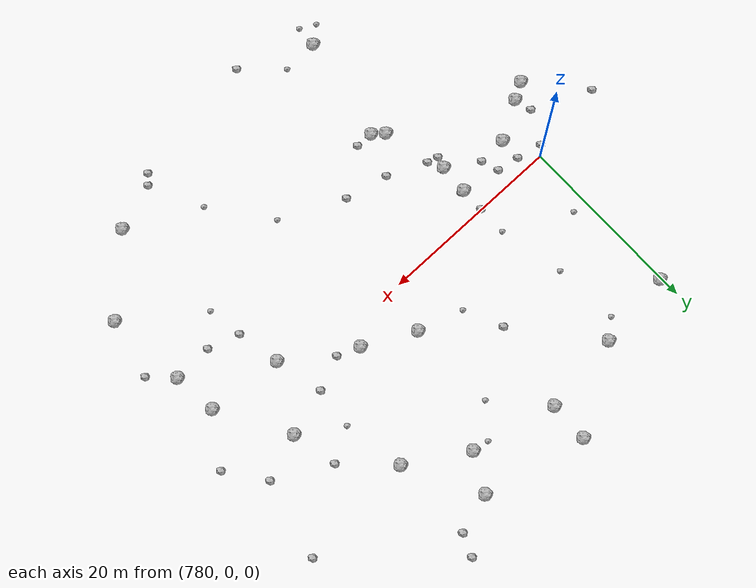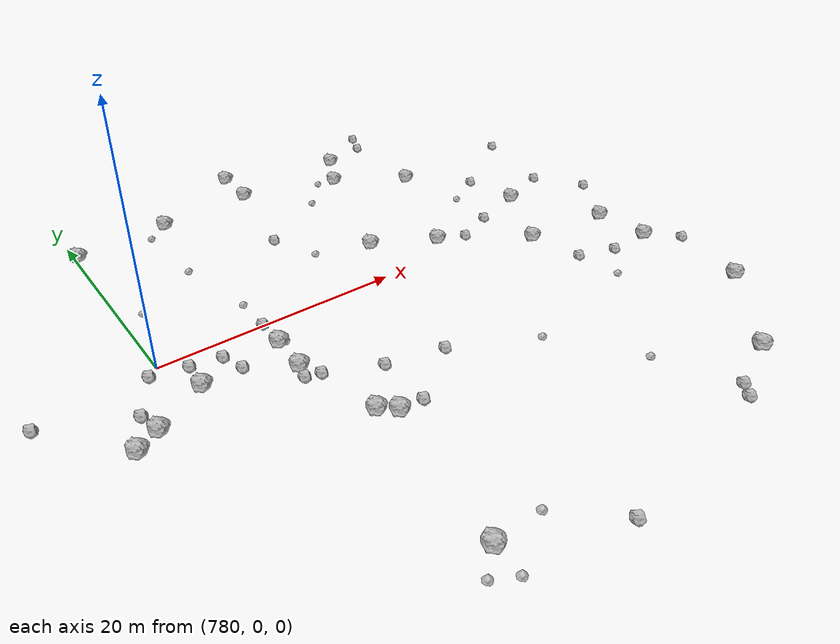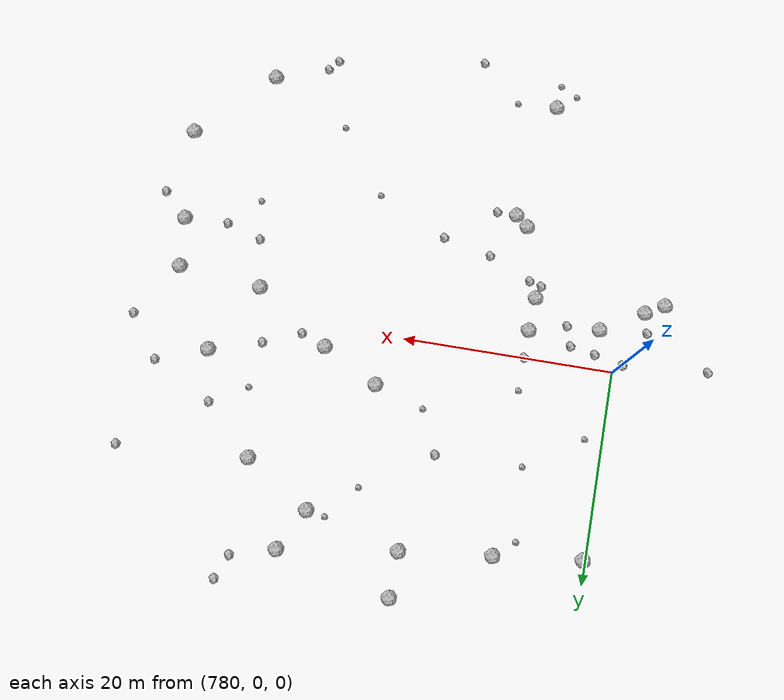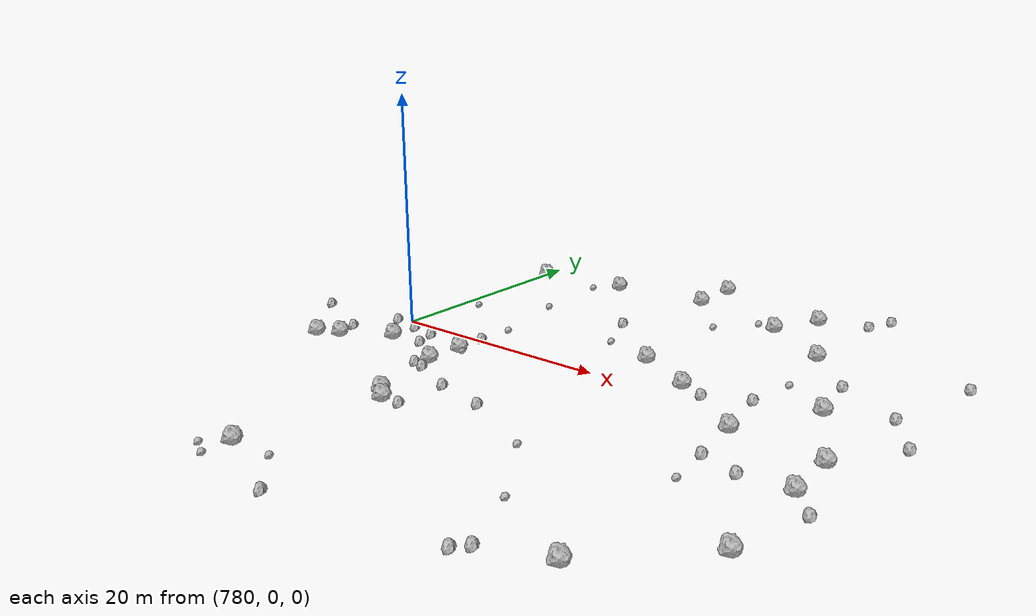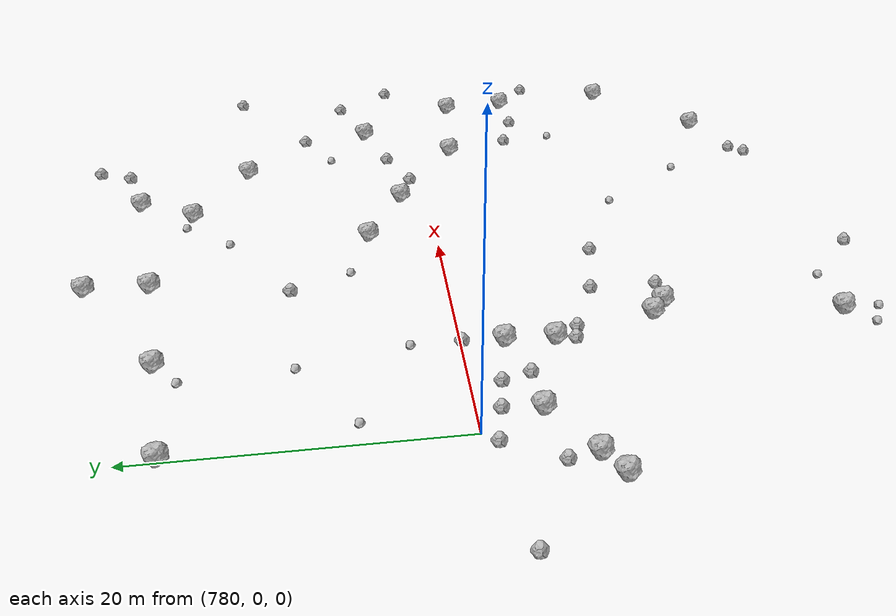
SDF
<sdf version="1.6">
 <world name="default">
  <include><uri>model://sun</uri></include>
  <model name="rock1_20_4">
   <include><uri>model://rock1</uri><pose>780.3140165738437 17.694148173926322 0.5 0 0 0</pose></include>
  </model>
  <model name="rock1_20_5">
   <include><uri>model://rock1</uri><pose>822.3353139622295 -3.3886008932532334 0.5 0 0 0</pose></include>
  </model>
  <model name="rock1_20_6">
   <include><uri>model://rock1</uri><pose>812.4443700902856 13.52710461142405 0.5 0 0 0</pose></include>
  </model>
  <model name="rock1_20_7">
   <include><uri>model://rock1</uri><pose>808.3180230028081 21.34588923805775 0.5 0 0 0</pose></include>
  </model>
  <model name="rock1_20_8">
   <include><uri>model://rock1</uri><pose>816.6879720119933 -23.579969299135538 0.5 0 0 0</pose></include>
  </model>
  <model name="rock1_20_9">
   <include><uri>model://rock1</uri><pose>818.1037098701971 4.08057352095895 0.5 0 0 0</pose></include>
  </model>
  <model name="rock1_20_10">
   <include><uri>model://rock1</uri><pose>814.3617406781141 -2.59020013127261 0.5 0 0 0</pose></include>
  </model>
  <model name="rock1_20_11">
   <include><uri>model://rock1</uri><pose>781.7672090666821 -3.8421126033120316 0.5 0 0 0</pose></include>
  </model>
  <model name="rock1_20_12">
   <include><uri>model://rock1</uri><pose>822.7773948229827 -8.137673422680077 0.5 0 0 0</pose></include>
  </model>
  <model name="rock1_20_13">
   <include><uri>model://rock1</uri><pose>807.2312557351105 2.0435741520092066 0.5 0 0 0</pose></include>
  </model>
  <model name="rock1_20_14">
   <include><uri>model://rock1</uri><pose>797.2058529053079 19.686185210025315 0.5 0 0 0</pose></include>
  </model>
  <model name="rock1_20_15">
   <include><uri>model://rock1</uri><pose>788.2144800587886 -5.8970269918903675 0.5 0 0 0</pose></include>
  </model>
  <model name="rock1_20_16">
   <include><uri>model://rock1</uri><pose>801.8849416539626 4.8170993997403 0.5 0 0 0</pose></include>
  </model>
  <model name="rock1_20_17">
   <include><uri>model://rock1</uri><pose>788.393411427484 -2.700111563775714 0.5 0 0 0</pose></include>
  </model>
  <model name="rock1_20_18">
   <include><uri>model://rock1</uri><pose>788.9505061007898 -25.040921354822558 0.5 0 0 0</pose></include>
  </model>
  <model name="rock1_20_19">
   <include><uri>model://rock1</uri><pose>791.213357008319 -13.648476179224453 0.5 0 0 0</pose></include>
  </model>
  <model name="rock1_20_20">
   <include><uri>model://rock1</uri><pose>788.5798524735251 18.67377560865981 0.5 0 0 0</pose></include>
  </model>
  <model name="rock1_20_21">
   <include><uri>model://rock1</uri><pose>777.7292001381487 -6.1691336616586625 0.5 0 0 0</pose></include>
  </model>
  <model name="rock1_20_22">
   <include><uri>model://rock1</uri><pose>797.3318795509941 23.962620111946002 0.5 0 0 0</pose></include>
  </model>
  <model name="rock1_20_23">
   <include><uri>model://rock1</uri><pose>775.9402074265384 -7.175261562429377 0.5 0 0 0</pose></include>
  </model>
  <model name="rock1_20_24">
   <include><uri>model://rock1</uri><pose>806.2067739283949 17.402991000118803 0.5 0 0 0</pose></include>
  </model>
  <model name="rock1_20_25">
   <include><uri>model://rock1</uri><pose>790.0354314767579 -12.669287873134248 0.5 0 0 0</pose></include>
  </model>
  <model name="rock1_20_26">
   <include><uri>model://rock1</uri><pose>823.5624701822446 -16.814952903853985 0.5 0 0 0</pose></include>
  </model>
  <model name="rock2_20_0">
   <include><uri>model://rock2</uri><pose>817.09405636696 8.988799727072518 0.3 0 0 0</pose></include>
  </model>
  <model name="rock2_20_1">
   <include><uri>model://rock2</uri><pose>797.7225548999688 -10.326109154586696 0.3 0 0 0</pose></include>
  </model>
  <model name="rock2_20_2">
   <include><uri>model://rock2</uri><pose>784.8293070591575 -3.7042077914675566 0.3 0 0 0</pose></include>
  </model>
  <model name="rock2_20_3">
   <include><uri>model://rock2</uri><pose>793.0583545722315 -13.691661080438582 0.3 0 0 0</pose></include>
  </model>
  <model name="rock2_20_4">
   <include><uri>model://rock2</uri><pose>796.603807927566 -28.49240192080372 0.3 0 0 0</pose></include>
  </model>
  <model name="rock2_20_5">
   <include><uri>model://rock2</uri><pose>777.22178929085 -4.262141007025871 0.3 0 0 0</pose></include>
  </model>
  <model name="rock2_20_6">
   <include><uri>model://rock2</uri><pose>822.9098606244168 5.857740915080697 0.3 0 0 0</pose></include>
  </model>
  <model name="rock2_20_7">
   <include><uri>model://rock2</uri><pose>812.5119135010688 22.597063469625837 0.3 0 0 0</pose></include>
  </model>
  <model name="rock2_20_8">
   <include><uri>model://rock2</uri><pose>815.239568048349 -7.238390712086332 0.3 0 0 0</pose></include>
  </model>
  <model name="rock2_20_9">
   <include><uri>model://rock2</uri><pose>813.486773499991 24.929517240761008 0.3 0 0 0</pose></include>
  </model>
  <model name="rock2_20_10">
   <include><uri>model://rock2</uri><pose>810.8561989286292 -26.3014668977813 0.3 0 0 0</pose></include>
  </model>
  <model name="rock2_20_11">
   <include><uri>model://rock2</uri><pose>781.8500485211903 -1.417470345331438 0.3 0 0 0</pose></include>
  </model>
  <model name="rock2_20_12">
   <include><uri>model://rock2</uri><pose>824.9331548875431 14.311133543798945 0.3 0 0 0</pose></include>
  </model>
  <model name="rock2_20_13">
   <include><uri>model://rock2</uri><pose>793.095478573693 -9.272511915759093 0.3 0 0 0</pose></include>
  </model>
  <model name="rock2_20_14">
   <include><uri>model://rock2</uri><pose>779.121820698452 -0.8275764456971899 0.3 0 0 0</pose></include>
  </model>
  <model name="rock2_20_15">
   <include><uri>model://rock2</uri><pose>795.2693245939207 10.412382035561563 0.3 0 0 0</pose></include>
  </model>
  <model name="rock2_20_16">
   <include><uri>model://rock2</uri><pose>813.1558227178305 2.6051904277497187 0.3 0 0 0</pose></include>
  </model>
  <model name="rock2_20_17">
   <include><uri>model://rock2</uri><pose>811.7070700718258 -25.310515361597886 0.3 0 0 0</pose></include>
  </model>
  <model name="rock2_20_18">
   <include><uri>model://rock2</uri><pose>818.5968197460955 -8.291667919136266 0.3 0 0 0</pose></include>
  </model>
  <model name="rock2_20_19">
   <include><uri>model://rock2</uri><pose>784.2336541446571 -1.8383988760892898 0.3 0 0 0</pose></include>
  </model>
  <model name="rock2_20_20">
   <include><uri>model://rock2</uri><pose>809.5894766345407 1.1177373960630206 0.3 0 0 0</pose></include>
  </model>
  <model name="rock2_20_21">
   <include><uri>model://rock2</uri><pose>825.0829791306007 -10.44250699537615 0.3 0 0 0</pose></include>
  </model>
  <model name="rock2_20_22">
   <include><uri>model://rock2</uri><pose>771.0562408884654 -1.4706618414439596 0.3 0 0 0</pose></include>
  </model>
  <model name="rock2_20_23">
   <include><uri>model://rock2</uri><pose>788.4026977429551 -0.05048217763482654 0.3 0 0 0</pose></include>
  </model>
  <model name="rock2_20_24">
   <include><uri>model://rock2</uri><pose>787.8268689216677 -7.119212634216694 0.3 0 0 0</pose></include>
  </model>
  <model name="rock2_20_25">
   <include><uri>model://rock2</uri><pose>825.8109022686281 1.8077245563900348 0.3 0 0 0</pose></include>
  </model>
  <model name="rock2_20_26">
   <include><uri>model://rock2</uri><pose>788.9932109101611 -7.449588608526131 0.3 0 0 0</pose></include>
  </model>
  <model name="rock3_20_0">
   <include><uri>model://rock3</uri><pose>813.6140712794123 6.991066029488543 0.2 0 0 0</pose></include>
  </model>
  <model name="rock3_20_1">
   <include><uri>model://rock3</uri><pose>804.4112235858128 17.710065737672707 0.2 0 0 0</pose></include>
  </model>
  <model name="rock3_20_2">
   <include><uri>model://rock3</uri><pose>787.0155530279023 10.148404698354028 0.2 0 0 0</pose></include>
  </model>
  <model name="rock3_20_3">
   <include><uri>model://rock3</uri><pose>792.7176014476602 -24.941716203631394 0.2 0 0 0</pose></include>
  </model>
  <model name="rock3_20_4">
   <include><uri>model://rock3</uri><pose>788.8184286483813 -2.8353518266115394 0.2 0 0 0</pose></include>
  </model>
  <model name="rock3_20_5">
   <include><uri>model://rock3</uri><pose>786.5762483892769 17.079834022594547 0.2 0 0 0</pose></include>
  </model>
  <model name="rock3_20_6">
   <include><uri>model://rock3</uri><pose>809.0062655835279 -19.710056661380086 0.2 0 0 0</pose></include>
  </model>
  <model name="rock3_20_7">
   <include><uri>model://rock3</uri><pose>815.7838649955801 -11.05437706846724 0.2 0 0 0</pose></include>
  </model>
  <model name="rock3_20_8">
   <include><uri>model://rock3</uri><pose>797.0595731196076 6.31697992983333 0.2 0 0 0</pose></include>
  </model>
  <model name="rock3_20_9">
   <include><uri>model://rock3</uri><pose>788.7516845682431 -27.405992343103115 0.2 0 0 0</pose></include>
  </model>
  <model name="rock3_20_10">
   <include><uri>model://rock3</uri><pose>781.6379160638348 6.638350520745405 0.2 0 0 0</pose></include>
  </model>
  <model name="rock3_20_11">
   <include><uri>model://rock3</uri><pose>787.1184835553202 -26.537532111367604 0.2 0 0 0</pose></include>
  </model>
  <model name="rock3_20_12">
   <include><uri>model://rock3</uri><pose>804.4331460094251 -13.51991227946787 0.2 0 0 0</pose></include>
  </model>
  <model name="rock3_20_13">
   <include><uri>model://rock3</uri><pose>801.7778428857569 14.552373718486379 0.2 0 0 0</pose></include>
  </model>
  <model name="rock3_20_14">
   <include><uri>model://rock3</uri><pose>788.4369270476512 3.116891915641716 0.2 0 0 0</pose></include>
  </model>
 </world>
</sdf>
